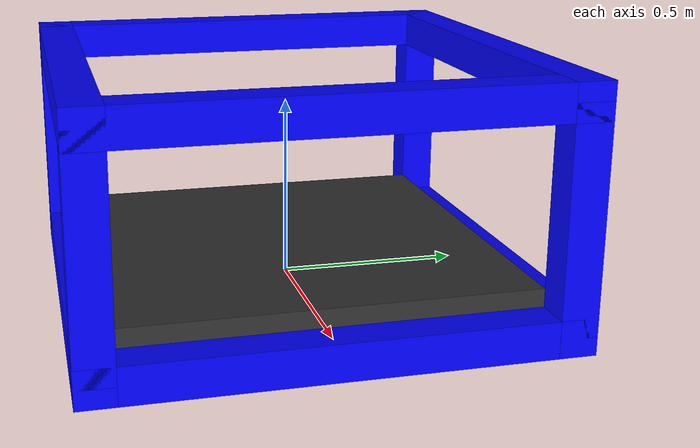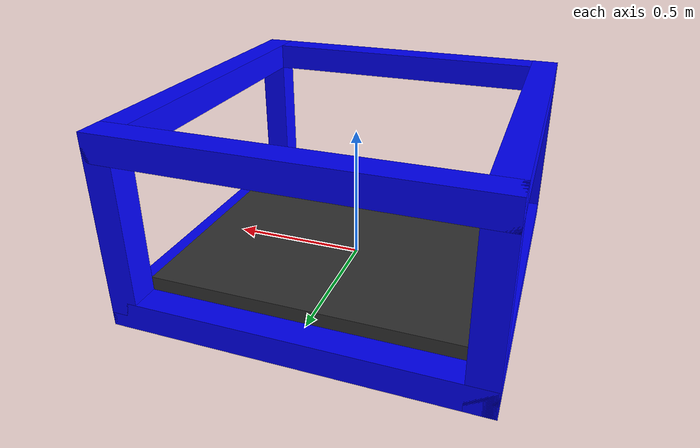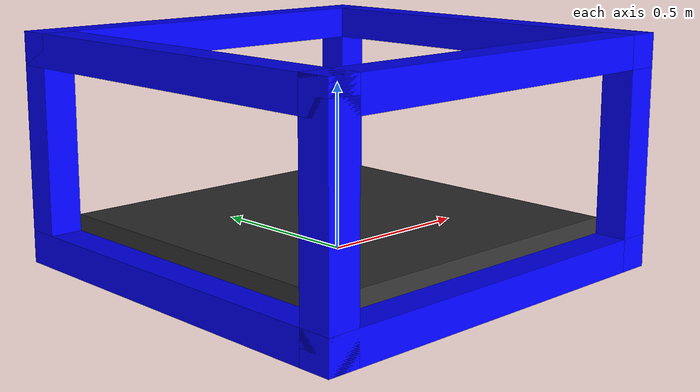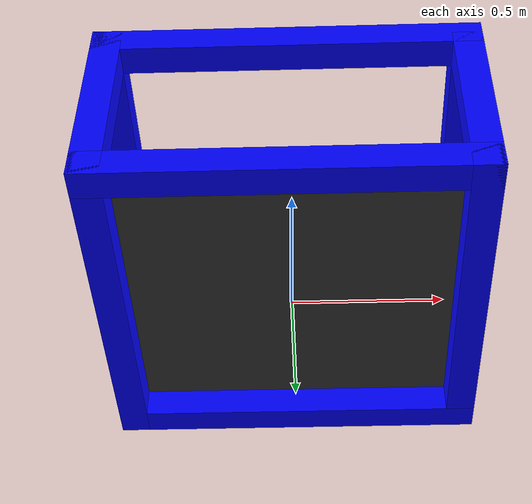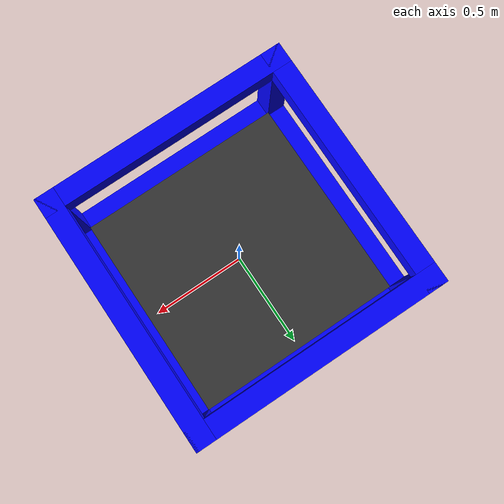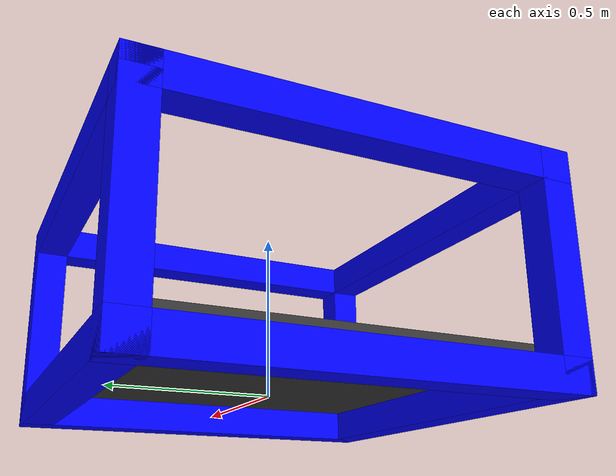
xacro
<?xml version="1.0"?>
<robot name="drone_box" xmlns:xacro="http://www.ros.org/wiki/xacro">

  <!-- Base link (frame beams) -->
  <link name="base_link">
    <inertial>
      <mass value="10.0"/>
      <inertia ixx="1.0" ixy="0.0" ixz="0.0"
               iyy="1.0" iyz="0.0"
               izz="1.0"/>
    </inertial>

    <!-- Bottom beams (z = 0.0) -->

    <!-- Front bottom beam -->
    <visual name="bottom_beam_front_visual">
      <origin xyz="0 0.595 0.0" rpy="0 0 0"/>
      <geometry>
        <box size="1.29 0.10 0.10"/>
      </geometry>
      <material name="frame_blue">
        <color rgba="0 0 1 1"/>
      </material>
    </visual>
    <collision name="bottom_beam_front_collision">
      <origin xyz="0 0.595 0.0" rpy="0 0 0"/>
      <geometry>
        <box size="1.29 0.10 0.10"/>
      </geometry>
    </collision>

    <!-- Back bottom beam -->
    <visual name="bottom_beam_back_visual">
      <origin xyz="0 -0.595 0.0" rpy="0 0 0"/>
      <geometry>
        <box size="1.29 0.10 0.10"/>
      </geometry>
      <material name="frame_blue">
        <color rgba="0 0 1 1"/>
      </material>
    </visual>
    <collision name="bottom_beam_back_collision">
      <origin xyz="0 -0.595 0.0" rpy="0 0 0"/>
      <geometry>
        <box size="1.29 0.10 0.10"/>
      </geometry>
    </collision>

    <!-- Left bottom beam -->
    <visual name="bottom_beam_left_visual">
      <origin xyz="0.595 0 0.0" rpy="0 0 0"/>
      <geometry>
        <box size="0.10 1.29 0.10"/>
      </geometry>
      <material name="frame_blue">
        <color rgba="0 0 1 1"/>
      </material>
    </visual>
    <collision name="bottom_beam_left_collision">
      <origin xyz="0.595 0 0.0" rpy="0 0 0"/>
      <geometry>
        <box size="0.10 1.29 0.10"/>
      </geometry>
    </collision>

    <!-- Right bottom beam -->
    <visual name="bottom_beam_right_visual">
      <origin xyz="-0.595 0 0.0" rpy="0 0 0"/>
      <geometry>
        <box size="0.10 1.29 0.10"/>
      </geometry>
      <material name="frame_blue">
        <color rgba="0 0 1 1"/>
      </material>
    </visual>
    <collision name="bottom_beam_right_collision">
      <origin xyz="-0.595 0 0.0" rpy="0 0 0"/>
      <geometry>
        <box size="0.10 1.29 0.10"/>
      </geometry>
    </collision>

    <!-- Top beams (z = 0.60) -->

    <!-- Front top beam -->
    <visual name="top_beam_front_visual">
      <origin xyz="0 0.595 0.60" rpy="0 0 0"/>
      <geometry>
        <box size="1.29 0.10 0.10"/>
      </geometry>
      <material name="frame_blue">
        <color rgba="0 0 1 1"/>
      </material>
    </visual>
    <collision name="top_beam_front_collision">
      <origin xyz="0 0.595 0.60" rpy="0 0 0"/>
      <geometry>
        <box size="1.29 0.10 0.10"/>
      </geometry>
    </collision>

    <!-- Back top beam -->
    <visual name="top_beam_back_visual">
      <origin xyz="0 -0.595 0.60" rpy="0 0 0"/>
      <geometry>
        <box size="1.29 0.10 0.10"/>
      </geometry>
      <material name="frame_blue">
        <color rgba="0 0 1 1"/>
      </material>
    </visual>
    <collision name="top_beam_back_collision">
      <origin xyz="0 -0.595 0.60" rpy="0 0 0"/>
      <geometry>
        <box size="1.29 0.10 0.10"/>
      </geometry>
    </collision>

    <!-- Left top beam -->
    <visual name="top_beam_left_visual">
      <origin xyz="0.595 0 0.60" rpy="0 0 0"/>
      <geometry>
        <box size="0.10 1.29 0.10"/>
      </geometry>
      <material name="frame_blue">
        <color rgba="0 0 1 1"/>
      </material>
    </visual>
    <collision name="top_beam_left_collision">
      <origin xyz="0.595 0 0.60" rpy="0 0 0"/>
      <geometry>
        <box size="0.10 1.29 0.10"/>
      </geometry>
    </collision>

    <!-- Right top beam -->
    <visual name="top_beam_right_visual">
      <origin xyz="-0.595 0 0.60" rpy="0 0 0"/>
      <geometry>
        <box size="0.10 1.29 0.10"/>
      </geometry>
      <material name="frame_blue">
        <color rgba="0 0 1 1"/>
      </material>
    </visual>
    <collision name="top_beam_right_collision">
      <origin xyz="-0.595 0 0.60" rpy="0 0 0"/>
      <geometry>
        <box size="0.10 1.29 0.10"/>
      </geometry>
    </collision>

    <!-- Vertical beams -->

    <!-- Front-left -->
    <visual name="vertical_fl_visual">
      <origin xyz="0.595 0.595 0.30" rpy="0 0 0"/>
      <geometry>
        <box size="0.10 0.10 0.60"/>
      </geometry>
      <material name="frame_blue">
        <color rgba="0 0 1 1"/>
      </material>
    </visual>
    <collision name="vertical_fl_collision">
      <origin xyz="0.595 0.595 0.30" rpy="0 0 0"/>
      <geometry>
        <box size="0.10 0.10 0.60"/>
      </geometry>
    </collision>

    <!-- Front-right -->
    <visual name="vertical_fr_visual">
      <origin xyz="-0.595 0.595 0.30" rpy="0 0 0"/>
      <geometry>
        <box size="0.10 0.10 0.60"/>
      </geometry>
      <material name="frame_blue">
        <color rgba="0 0 1 1"/>
      </material>
    </visual>
    <collision name="vertical_fr_collision">
      <origin xyz="-0.595 0.595 0.30" rpy="0 0 0"/>
      <geometry>
        <box size="0.10 0.10 0.60"/>
      </geometry>
    </collision>

    <!-- Back-left -->
    <visual name="vertical_bl_visual">
      <origin xyz="0.595 -0.595 0.30" rpy="0 0 0"/>
      <geometry>
        <box size="0.10 0.10 0.60"/>
      </geometry>
      <material name="frame_blue">
        <color rgba="0 0 1 1"/>
      </material>
    </visual>
    <collision name="vertical_bl_collision">
      <origin xyz="0.595 -0.595 0.30" rpy="0 0 0"/>
      <geometry>
        <box size="0.10 0.10 0.60"/>
      </geometry>
    </collision>

    <!-- Back-right -->
    <visual name="vertical_br_visual">
      <origin xyz="-0.595 -0.595 0.30" rpy="0 0 0"/>
      <geometry>
        <box size="0.10 0.10 0.60"/>
      </geometry>
      <material name="frame_blue">
        <color rgba="0 0 1 1"/>
      </material>
    </visual>
    <collision name="vertical_br_collision">
      <origin xyz="-0.595 -0.595 0.30" rpy="0 0 0"/>
      <geometry>
        <box size="0.10 0.10 0.60"/>
      </geometry>
    </collision>

  </link>

  <!-- Sliding platform (door) -->
  <link name="sliding_platform">
    <inertial>
      <mass value="5.0"/>
      <inertia ixx="0.1" ixy="0.0" ixz="0.0"
               iyy="0.1" iyz="0.0"
               izz="0.1"/>
    </inertial>

    <!-- Same size as SDF: 1.09 x 1.09 x 0.05 -->
    <visual name="sliding_platform_visual">
      <origin xyz="0 0 0.075" rpy="0 0 0"/>
      <geometry>
        <box size="1.09 1.09 0.05"/>
      </geometry>
      <material name="door_grey">
        <color rgba="0.2 0.2 0.2 1.0"/>
      </material>
    </visual>

    <collision name="sliding_platform_collision">
      <origin xyz="0 0 0.075" rpy="0 0 0"/>
      <geometry>
        <box size="1.09 1.09 0.05"/>
      </geometry>
    </collision>
  </link>

  <!-- Prismatic joint (slide along +X) -->
  <joint name="slide_joint" type="prismatic">
    <parent link="base_link"/>
    <child link="sliding_platform"/>

    <origin xyz="0 0 0" rpy="0 0 0"/>
    <axis xyz="1 0 0"/>

    <!-- Same limits as SDF: 0 ... 0.93 m -->
    <limit lower="0.0" upper="0.93"
           effort="100.0" velocity="2.0"/>
    <dynamics damping="1.0" friction="0.1"/>
  </joint>

  <!-- ros2_control description -->
  <ros2_control name="GazeboSystem" type="system">
    <hardware>
      <plugin>gazebo_ros2_control/GazeboSystem</plugin>
    </hardware>

    <joint name="slide_joint">
      <command_interface name="position"/>
      <state_interface name="position"/>
      <state_interface name="velocity"/>
    </joint>
  </ros2_control>

  <!-- Gazebo plugin that spins up controller_manager -->
  <gazebo>
    <plugin name="gazebo_ros2_control" filename="libgazebo_ros2_control.so">
      <!-- Direct parameter file for gazebo_ros2_control -->
      <parameters>$(find dronehive_gazebo)/config/drone_box_controllers.yaml</parameters>
    </plugin>
  </gazebo>

</robot>
